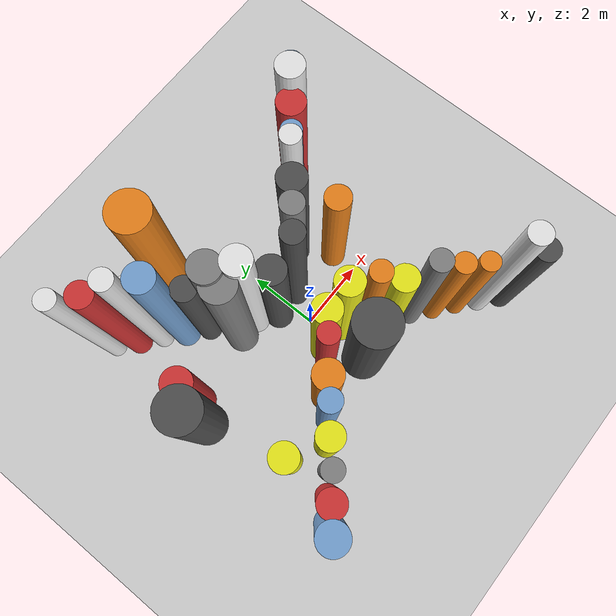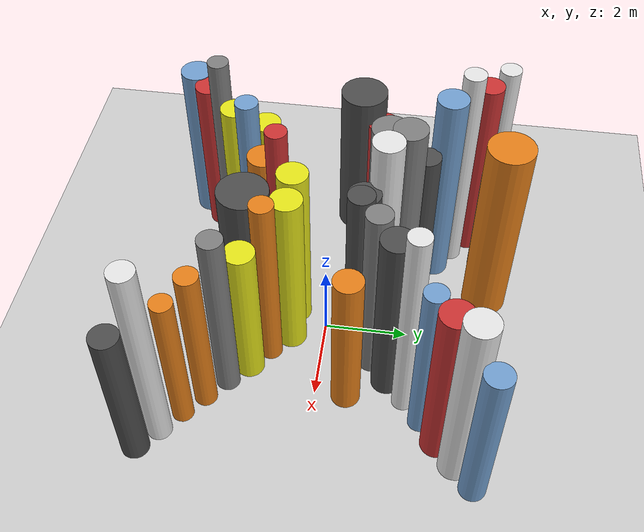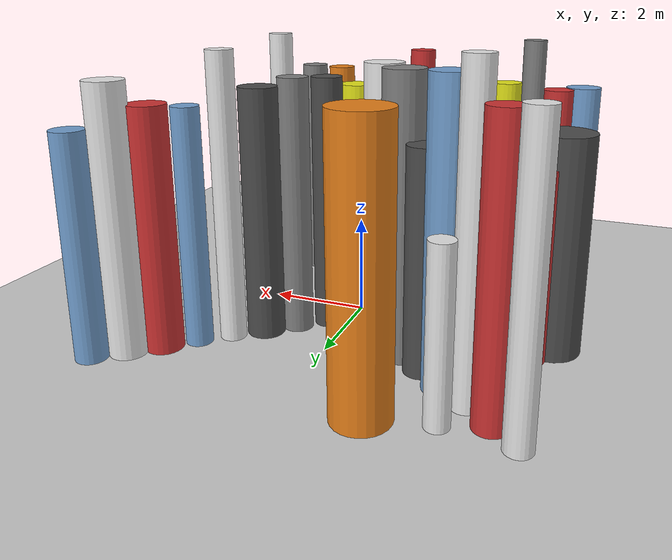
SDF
<?xml version='1.0'?>
<sdf version='1.6'>
  <world name='routeA_rl_v1__dense_recovery__rl_train__bottleneck_corridor__000066'>
    <!-- Sun light -->
    <light name='sun' type='directional'>
      <cast_shadows>1</cast_shadows>
      <pose>0 0 10 0 0 0</pose>
      <diffuse>0.8 0.8 0.8 1</diffuse>
      <specular>0.2 0.2 0.2 1</specular>
      <attenuation>
        <range>1000</range>
        <constant>0.9</constant>
        <linear>0.01</linear>
        <quadratic>0.001</quadratic>
      </attenuation>
      <direction>-0.5 0.1 -0.9</direction>
    </light>

    <!-- Ground plane -->
    <model name='ground_plane'>
      <static>1</static>
      <link name='link'>
        <collision name='collision'>
          <geometry>
            <plane>
              <normal>0 0 1</normal>
              <size>100 100</size>
            </plane>
          </geometry>
          <surface>
            <contact>
              <collide_bitmask>65535</collide_bitmask>
              <ode/>
            </contact>
            <friction>
              <ode>
                <mu>100</mu>
                <mu2>50</mu2>
              </ode>
              <torsional><ode/></torsional>
            </friction>
            <bounce/>
          </surface>
          <max_contacts>10</max_contacts>
        </collision>
        <visual name='visual'>
          <cast_shadows>0</cast_shadows>
          <geometry>
            <plane>
              <normal>0 0 1</normal>
              <size>100 100</size>
            </plane>
          </geometry>
          <material>
            <script>
              <uri>file://media/materials/scripts/gazebo.material</uri>
              <n>Gazebo/Grey</n>
            </script>
          </material>
        </visual>
      </link>
    </model>

    <!-- Environment -->
    <magnetic_field>6e-06 2.3e-05 -4.2e-05</magnetic_field>
    <atmosphere type='adiabatic'/>
    <physics name='default_physics' default='0' type='ode'>
      <gravity>0 0 -9.8</gravity>
      <max_step_size>0.004</max_step_size>
      <real_time_factor>1</real_time_factor>
      <real_time_update_rate>250</real_time_update_rate>
    </physics>
    <scene>
      <ambient>0.4 0.4 0.4 1</ambient>
      <background>0.7 0.7 0.7 1</background>
      <shadows>1</shadows>
    </scene>
    <wind/>
    <spherical_coordinates>
      <surface_model>EARTH_WGS84</surface_model>
      <latitude_deg>0</latitude_deg>
      <longitude_deg>0</longitude_deg>
      <elevation>0</elevation>
      <heading_deg>0</heading_deg>
    </spherical_coordinates>

    <!-- ============ OBSTACLES (40) ============ -->
    <model name='funnel_l_0'>
      <static>1</static>
      <link name='link'>
        <visual name='visual'>
          <geometry>
            <cylinder>
              <radius>0.3861</radius>
              <length>4.4952</length>
            </cylinder>
          </geometry>
          <material>
            <script>
              <n>Gazebo/Blue</n>
              <uri>file://media/materials/scripts/gazebo.material</uri>
            </script>
            <ambient>0.447 0.624 0.812 1</ambient>
          </material>
        </visual>
        <collision name='collision'>
          <geometry>
            <cylinder>
              <radius>0.3861</radius>
              <length>4.4952</length>
            </cylinder>
          </geometry>
          <max_contacts>10</max_contacts>
          <surface>
            <contact><ode/></contact>
            <bounce/>
            <friction>
              <ode><mu>1</mu><mu2>1</mu2></ode>
              <torsional><ode/></torsional>
            </friction>
          </surface>
        </collision>
      </link>
      <pose>-4.0000 -3.8000 2.2476 0 0 0.0000</pose>
    </model>

    <model name='funnel_r_0'>
      <static>1</static>
      <link name='link'>
        <visual name='visual'>
          <geometry>
            <cylinder>
              <radius>0.2563</radius>
              <length>5.3229</length>
            </cylinder>
          </geometry>
          <material>
            <script>
              <n>Gazebo/White</n>
              <uri>file://media/materials/scripts/gazebo.material</uri>
            </script>
            <ambient>0.9 0.9 0.9 1</ambient>
          </material>
        </visual>
        <collision name='collision'>
          <geometry>
            <cylinder>
              <radius>0.2563</radius>
              <length>5.3229</length>
            </cylinder>
          </geometry>
          <max_contacts>10</max_contacts>
          <surface>
            <contact><ode/></contact>
            <bounce/>
            <friction>
              <ode><mu>1</mu><mu2>1</mu2></ode>
              <torsional><ode/></torsional>
            </friction>
          </surface>
        </collision>
      </link>
      <pose>-4.0000 3.8000 2.6614 0 0 0.0000</pose>
    </model>

    <model name='funnel_l_1'>
      <static>1</static>
      <link name='link'>
        <visual name='visual'>
          <geometry>
            <cylinder>
              <radius>0.3411</radius>
              <length>4.4759</length>
            </cylinder>
          </geometry>
          <material>
            <script>
              <n>Gazebo/Red</n>
              <uri>file://media/materials/scripts/gazebo.material</uri>
            </script>
            <ambient>0.8 0.2 0.2 1</ambient>
          </material>
        </visual>
        <collision name='collision'>
          <geometry>
            <cylinder>
              <radius>0.3411</radius>
              <length>4.4759</length>
            </cylinder>
          </geometry>
          <max_contacts>10</max_contacts>
          <surface>
            <contact><ode/></contact>
            <bounce/>
            <friction>
              <ode><mu>1</mu><mu2>1</mu2></ode>
              <torsional><ode/></torsional>
            </friction>
          </surface>
        </collision>
      </link>
      <pose>-3.4857 -3.3714 2.2380 0 0 0.0000</pose>
    </model>

    <model name='funnel_r_1'>
      <static>1</static>
      <link name='link'>
        <visual name='visual'>
          <geometry>
            <cylinder>
              <radius>0.3231</radius>
              <length>5.2009</length>
            </cylinder>
          </geometry>
          <material>
            <script>
              <n>Gazebo/Red</n>
              <uri>file://media/materials/scripts/gazebo.material</uri>
            </script>
            <ambient>0.8 0.2 0.2 1</ambient>
          </material>
        </visual>
        <collision name='collision'>
          <geometry>
            <cylinder>
              <radius>0.3231</radius>
              <length>5.2009</length>
            </cylinder>
          </geometry>
          <max_contacts>10</max_contacts>
          <surface>
            <contact><ode/></contact>
            <bounce/>
            <friction>
              <ode><mu>1</mu><mu2>1</mu2></ode>
              <torsional><ode/></torsional>
            </friction>
          </surface>
        </collision>
      </link>
      <pose>-3.4857 3.3714 2.6004 0 0 0.0000</pose>
    </model>

    <model name='funnel_l_2'>
      <static>1</static>
      <link name='link'>
        <visual name='visual'>
          <geometry>
            <cylinder>
              <radius>0.2502</radius>
              <length>5.5939</length>
            </cylinder>
          </geometry>
          <material>
            <script>
              <n>Gazebo/Grey</n>
              <uri>file://media/materials/scripts/gazebo.material</uri>
            </script>
            <ambient>0.5 0.5 0.5 1</ambient>
          </material>
        </visual>
        <collision name='collision'>
          <geometry>
            <cylinder>
              <radius>0.2502</radius>
              <length>5.5939</length>
            </cylinder>
          </geometry>
          <max_contacts>10</max_contacts>
          <surface>
            <contact><ode/></contact>
            <bounce/>
            <friction>
              <ode><mu>1</mu><mu2>1</mu2></ode>
              <torsional><ode/></torsional>
            </friction>
          </surface>
        </collision>
      </link>
      <pose>-2.9714 -2.9429 2.7970 0 0 0.0000</pose>
    </model>

    <model name='funnel_r_2'>
      <static>1</static>
      <link name='link'>
        <visual name='visual'>
          <geometry>
            <cylinder>
              <radius>0.2661</radius>
              <length>5.8677</length>
            </cylinder>
          </geometry>
          <material>
            <script>
              <n>Gazebo/White</n>
              <uri>file://media/materials/scripts/gazebo.material</uri>
            </script>
            <ambient>0.9 0.9 0.9 1</ambient>
          </material>
        </visual>
        <collision name='collision'>
          <geometry>
            <cylinder>
              <radius>0.2661</radius>
              <length>5.8677</length>
            </cylinder>
          </geometry>
          <max_contacts>10</max_contacts>
          <surface>
            <contact><ode/></contact>
            <bounce/>
            <friction>
              <ode><mu>1</mu><mu2>1</mu2></ode>
              <torsional><ode/></torsional>
            </friction>
          </surface>
        </collision>
      </link>
      <pose>-2.9714 2.9429 2.9339 0 0 0.0000</pose>
    </model>

    <model name='funnel_l_3'>
      <static>1</static>
      <link name='link'>
        <visual name='visual'>
          <geometry>
            <cylinder>
              <radius>0.3323</radius>
              <length>4.7001</length>
            </cylinder>
          </geometry>
          <material>
            <script>
              <n>Gazebo/Yellow</n>
              <uri>file://media/materials/scripts/gazebo.material</uri>
            </script>
            <ambient>0.9 0.9 0.1 1</ambient>
          </material>
        </visual>
        <collision name='collision'>
          <geometry>
            <cylinder>
              <radius>0.3323</radius>
              <length>4.7001</length>
            </cylinder>
          </geometry>
          <max_contacts>10</max_contacts>
          <surface>
            <contact><ode/></contact>
            <bounce/>
            <friction>
              <ode><mu>1</mu><mu2>1</mu2></ode>
              <torsional><ode/></torsional>
            </friction>
          </surface>
        </collision>
      </link>
      <pose>-2.4571 -2.5143 2.3500 0 0 0.0000</pose>
    </model>

    <model name='funnel_r_3'>
      <static>1</static>
      <link name='link'>
        <visual name='visual'>
          <geometry>
            <cylinder>
              <radius>0.3681</radius>
              <length>5.5388</length>
            </cylinder>
          </geometry>
          <material>
            <script>
              <n>Gazebo/Blue</n>
              <uri>file://media/materials/scripts/gazebo.material</uri>
            </script>
            <ambient>0.447 0.624 0.812 1</ambient>
          </material>
        </visual>
        <collision name='collision'>
          <geometry>
            <cylinder>
              <radius>0.3681</radius>
              <length>5.5388</length>
            </cylinder>
          </geometry>
          <max_contacts>10</max_contacts>
          <surface>
            <contact><ode/></contact>
            <bounce/>
            <friction>
              <ode><mu>1</mu><mu2>1</mu2></ode>
              <torsional><ode/></torsional>
            </friction>
          </surface>
        </collision>
      </link>
      <pose>-2.4571 2.5143 2.7694 0 0 0.0000</pose>
    </model>

    <model name='funnel_l_4'>
      <static>1</static>
      <link name='link'>
        <visual name='visual'>
          <geometry>
            <cylinder>
              <radius>0.2711</radius>
              <length>5.3368</length>
            </cylinder>
          </geometry>
          <material>
            <script>
              <n>Gazebo/Blue</n>
              <uri>file://media/materials/scripts/gazebo.material</uri>
            </script>
            <ambient>0.447 0.624 0.812 1</ambient>
          </material>
        </visual>
        <collision name='collision'>
          <geometry>
            <cylinder>
              <radius>0.2711</radius>
              <length>5.3368</length>
            </cylinder>
          </geometry>
          <max_contacts>10</max_contacts>
          <surface>
            <contact><ode/></contact>
            <bounce/>
            <friction>
              <ode><mu>1</mu><mu2>1</mu2></ode>
              <torsional><ode/></torsional>
            </friction>
          </surface>
        </collision>
      </link>
      <pose>-1.9429 -2.0857 2.6684 0 0 0.0000</pose>
    </model>

    <model name='funnel_r_4'>
      <static>1</static>
      <link name='link'>
        <visual name='visual'>
          <geometry>
            <cylinder>
              <radius>0.3254</radius>
              <length>4.2283</length>
            </cylinder>
          </geometry>
          <material>
            <script>
              <n>Gazebo/DarkGrey</n>
              <uri>file://media/materials/scripts/gazebo.material</uri>
            </script>
            <ambient>0.3 0.3 0.3 1</ambient>
          </material>
        </visual>
        <collision name='collision'>
          <geometry>
            <cylinder>
              <radius>0.3254</radius>
              <length>4.2283</length>
            </cylinder>
          </geometry>
          <max_contacts>10</max_contacts>
          <surface>
            <contact><ode/></contact>
            <bounce/>
            <friction>
              <ode><mu>1</mu><mu2>1</mu2></ode>
              <torsional><ode/></torsional>
            </friction>
          </surface>
        </collision>
      </link>
      <pose>-1.9429 2.0857 2.1141 0 0 0.0000</pose>
    </model>

    <model name='funnel_l_5'>
      <static>1</static>
      <link name='link'>
        <visual name='visual'>
          <geometry>
            <cylinder>
              <radius>0.3804</radius>
              <length>4.2447</length>
            </cylinder>
          </geometry>
          <material>
            <script>
              <n>Gazebo/Orange</n>
              <uri>file://media/materials/scripts/gazebo.material</uri>
            </script>
            <ambient>0.9 0.5 0.1 1</ambient>
          </material>
        </visual>
        <collision name='collision'>
          <geometry>
            <cylinder>
              <radius>0.3804</radius>
              <length>4.2447</length>
            </cylinder>
          </geometry>
          <max_contacts>10</max_contacts>
          <surface>
            <contact><ode/></contact>
            <bounce/>
            <friction>
              <ode><mu>1</mu><mu2>1</mu2></ode>
              <torsional><ode/></torsional>
            </friction>
          </surface>
        </collision>
      </link>
      <pose>-1.4286 -1.6571 2.1223 0 0 0.0000</pose>
    </model>

    <model name='funnel_r_5'>
      <static>1</static>
      <link name='link'>
        <visual name='visual'>
          <geometry>
            <cylinder>
              <radius>0.3972</radius>
              <length>5.4399</length>
            </cylinder>
          </geometry>
          <material>
            <script>
              <n>Gazebo/Grey</n>
              <uri>file://media/materials/scripts/gazebo.material</uri>
            </script>
            <ambient>0.5 0.5 0.5 1</ambient>
          </material>
        </visual>
        <collision name='collision'>
          <geometry>
            <cylinder>
              <radius>0.3972</radius>
              <length>5.4399</length>
            </cylinder>
          </geometry>
          <max_contacts>10</max_contacts>
          <surface>
            <contact><ode/></contact>
            <bounce/>
            <friction>
              <ode><mu>1</mu><mu2>1</mu2></ode>
              <torsional><ode/></torsional>
            </friction>
          </surface>
        </collision>
      </link>
      <pose>-1.4286 1.6571 2.7199 0 0 0.0000</pose>
    </model>

    <model name='funnel_l_6'>
      <static>1</static>
      <link name='link'>
        <visual name='visual'>
          <geometry>
            <cylinder>
              <radius>0.2557</radius>
              <length>5.4670</length>
            </cylinder>
          </geometry>
          <material>
            <script>
              <n>Gazebo/Red</n>
              <uri>file://media/materials/scripts/gazebo.material</uri>
            </script>
            <ambient>0.8 0.2 0.2 1</ambient>
          </material>
        </visual>
        <collision name='collision'>
          <geometry>
            <cylinder>
              <radius>0.2557</radius>
              <length>5.4670</length>
            </cylinder>
          </geometry>
          <max_contacts>10</max_contacts>
          <surface>
            <contact><ode/></contact>
            <bounce/>
            <friction>
              <ode><mu>1</mu><mu2>1</mu2></ode>
              <torsional><ode/></torsional>
            </friction>
          </surface>
        </collision>
      </link>
      <pose>-0.9143 -1.2286 2.7335 0 0 0.0000</pose>
    </model>

    <model name='funnel_r_6'>
      <static>1</static>
      <link name='link'>
        <visual name='visual'>
          <geometry>
            <cylinder>
              <radius>0.3727</radius>
              <length>5.4706</length>
            </cylinder>
          </geometry>
          <material>
            <script>
              <n>Gazebo/White</n>
              <uri>file://media/materials/scripts/gazebo.material</uri>
            </script>
            <ambient>0.9 0.9 0.9 1</ambient>
          </material>
        </visual>
        <collision name='collision'>
          <geometry>
            <cylinder>
              <radius>0.3727</radius>
              <length>5.4706</length>
            </cylinder>
          </geometry>
          <max_contacts>10</max_contacts>
          <surface>
            <contact><ode/></contact>
            <bounce/>
            <friction>
              <ode><mu>1</mu><mu2>1</mu2></ode>
              <torsional><ode/></torsional>
            </friction>
          </surface>
        </collision>
      </link>
      <pose>-0.9143 1.2286 2.7353 0 0 0.0000</pose>
    </model>

    <model name='funnel_l_7'>
      <static>1</static>
      <link name='link'>
        <visual name='visual'>
          <geometry>
            <cylinder>
              <radius>0.3658</radius>
              <length>4.7718</length>
            </cylinder>
          </geometry>
          <material>
            <script>
              <n>Gazebo/Yellow</n>
              <uri>file://media/materials/scripts/gazebo.material</uri>
            </script>
            <ambient>0.9 0.9 0.1 1</ambient>
          </material>
        </visual>
        <collision name='collision'>
          <geometry>
            <cylinder>
              <radius>0.3658</radius>
              <length>4.7718</length>
            </cylinder>
          </geometry>
          <max_contacts>10</max_contacts>
          <surface>
            <contact><ode/></contact>
            <bounce/>
            <friction>
              <ode><mu>1</mu><mu2>1</mu2></ode>
              <torsional><ode/></torsional>
            </friction>
          </surface>
        </collision>
      </link>
      <pose>-0.4000 -0.8000 2.3859 0 0 0.0000</pose>
    </model>

    <model name='funnel_r_7'>
      <static>1</static>
      <link name='link'>
        <visual name='visual'>
          <geometry>
            <cylinder>
              <radius>0.3838</radius>
              <length>4.3619</length>
            </cylinder>
          </geometry>
          <material>
            <script>
              <n>Gazebo/DarkGrey</n>
              <uri>file://media/materials/scripts/gazebo.material</uri>
            </script>
            <ambient>0.3 0.3 0.3 1</ambient>
          </material>
        </visual>
        <collision name='collision'>
          <geometry>
            <cylinder>
              <radius>0.3838</radius>
              <length>4.3619</length>
            </cylinder>
          </geometry>
          <max_contacts>10</max_contacts>
          <surface>
            <contact><ode/></contact>
            <bounce/>
            <friction>
              <ode><mu>1</mu><mu2>1</mu2></ode>
              <torsional><ode/></torsional>
            </friction>
          </surface>
        </collision>
      </link>
      <pose>-0.4000 0.8000 2.1810 0 0 0.0000</pose>
    </model>

    <model name='funnel_out_l_0'>
      <static>1</static>
      <link name='link'>
        <visual name='visual'>
          <geometry>
            <cylinder>
              <radius>0.3661</radius>
              <length>4.7547</length>
            </cylinder>
          </geometry>
          <material>
            <script>
              <n>Gazebo/Yellow</n>
              <uri>file://media/materials/scripts/gazebo.material</uri>
            </script>
            <ambient>0.9 0.9 0.1 1</ambient>
          </material>
        </visual>
        <collision name='collision'>
          <geometry>
            <cylinder>
              <radius>0.3661</radius>
              <length>4.7547</length>
            </cylinder>
          </geometry>
          <max_contacts>10</max_contacts>
          <surface>
            <contact><ode/></contact>
            <bounce/>
            <friction>
              <ode><mu>1</mu><mu2>1</mu2></ode>
              <torsional><ode/></torsional>
            </friction>
          </surface>
        </collision>
      </link>
      <pose>0.4000 -0.8000 2.3774 0 0 0.0000</pose>
    </model>

    <model name='funnel_out_r_0'>
      <static>1</static>
      <link name='link'>
        <visual name='visual'>
          <geometry>
            <cylinder>
              <radius>0.3048</radius>
              <length>5.1038</length>
            </cylinder>
          </geometry>
          <material>
            <script>
              <n>Gazebo/DarkGrey</n>
              <uri>file://media/materials/scripts/gazebo.material</uri>
            </script>
            <ambient>0.3 0.3 0.3 1</ambient>
          </material>
        </visual>
        <collision name='collision'>
          <geometry>
            <cylinder>
              <radius>0.3048</radius>
              <length>5.1038</length>
            </cylinder>
          </geometry>
          <max_contacts>10</max_contacts>
          <surface>
            <contact><ode/></contact>
            <bounce/>
            <friction>
              <ode><mu>1</mu><mu2>1</mu2></ode>
              <torsional><ode/></torsional>
            </friction>
          </surface>
        </collision>
      </link>
      <pose>0.4000 0.8000 2.5519 0 0 0.0000</pose>
    </model>

    <model name='funnel_out_l_1'>
      <static>1</static>
      <link name='link'>
        <visual name='visual'>
          <geometry>
            <cylinder>
              <radius>0.2746</radius>
              <length>5.0523</length>
            </cylinder>
          </geometry>
          <material>
            <script>
              <n>Gazebo/Orange</n>
              <uri>file://media/materials/scripts/gazebo.material</uri>
            </script>
            <ambient>0.9 0.5 0.1 1</ambient>
          </material>
        </visual>
        <collision name='collision'>
          <geometry>
            <cylinder>
              <radius>0.2746</radius>
              <length>5.0523</length>
            </cylinder>
          </geometry>
          <max_contacts>10</max_contacts>
          <surface>
            <contact><ode/></contact>
            <bounce/>
            <friction>
              <ode><mu>1</mu><mu2>1</mu2></ode>
              <torsional><ode/></torsional>
            </friction>
          </surface>
        </collision>
      </link>
      <pose>0.9143 -1.2286 2.5262 0 0 0.0000</pose>
    </model>

    <model name='funnel_out_r_1'>
      <static>1</static>
      <link name='link'>
        <visual name='visual'>
          <geometry>
            <cylinder>
              <radius>0.3016</radius>
              <length>5.1256</length>
            </cylinder>
          </geometry>
          <material>
            <script>
              <n>Gazebo/Grey</n>
              <uri>file://media/materials/scripts/gazebo.material</uri>
            </script>
            <ambient>0.5 0.5 0.5 1</ambient>
          </material>
        </visual>
        <collision name='collision'>
          <geometry>
            <cylinder>
              <radius>0.3016</radius>
              <length>5.1256</length>
            </cylinder>
          </geometry>
          <max_contacts>10</max_contacts>
          <surface>
            <contact><ode/></contact>
            <bounce/>
            <friction>
              <ode><mu>1</mu><mu2>1</mu2></ode>
              <torsional><ode/></torsional>
            </friction>
          </surface>
        </collision>
      </link>
      <pose>0.9143 1.2286 2.5628 0 0 0.0000</pose>
    </model>

    <model name='funnel_out_l_2'>
      <static>1</static>
      <link name='link'>
        <visual name='visual'>
          <geometry>
            <cylinder>
              <radius>0.3524</radius>
              <length>4.0826</length>
            </cylinder>
          </geometry>
          <material>
            <script>
              <n>Gazebo/Yellow</n>
              <uri>file://media/materials/scripts/gazebo.material</uri>
            </script>
            <ambient>0.9 0.9 0.1 1</ambient>
          </material>
        </visual>
        <collision name='collision'>
          <geometry>
            <cylinder>
              <radius>0.3524</radius>
              <length>4.0826</length>
            </cylinder>
          </geometry>
          <max_contacts>10</max_contacts>
          <surface>
            <contact><ode/></contact>
            <bounce/>
            <friction>
              <ode><mu>1</mu><mu2>1</mu2></ode>
              <torsional><ode/></torsional>
            </friction>
          </surface>
        </collision>
      </link>
      <pose>1.4286 -1.6571 2.0413 0 0 0.0000</pose>
    </model>

    <model name='funnel_out_r_2'>
      <static>1</static>
      <link name='link'>
        <visual name='visual'>
          <geometry>
            <cylinder>
              <radius>0.3758</radius>
              <length>4.9770</length>
            </cylinder>
          </geometry>
          <material>
            <script>
              <n>Gazebo/DarkGrey</n>
              <uri>file://media/materials/scripts/gazebo.material</uri>
            </script>
            <ambient>0.3 0.3 0.3 1</ambient>
          </material>
        </visual>
        <collision name='collision'>
          <geometry>
            <cylinder>
              <radius>0.3758</radius>
              <length>4.9770</length>
            </cylinder>
          </geometry>
          <max_contacts>10</max_contacts>
          <surface>
            <contact><ode/></contact>
            <bounce/>
            <friction>
              <ode><mu>1</mu><mu2>1</mu2></ode>
              <torsional><ode/></torsional>
            </friction>
          </surface>
        </collision>
      </link>
      <pose>1.4286 1.6571 2.4885 0 0 0.0000</pose>
    </model>

    <model name='funnel_out_l_3'>
      <static>1</static>
      <link name='link'>
        <visual name='visual'>
          <geometry>
            <cylinder>
              <radius>0.2839</radius>
              <length>4.9646</length>
            </cylinder>
          </geometry>
          <material>
            <script>
              <n>Gazebo/Grey</n>
              <uri>file://media/materials/scripts/gazebo.material</uri>
            </script>
            <ambient>0.5 0.5 0.5 1</ambient>
          </material>
        </visual>
        <collision name='collision'>
          <geometry>
            <cylinder>
              <radius>0.2839</radius>
              <length>4.9646</length>
            </cylinder>
          </geometry>
          <max_contacts>10</max_contacts>
          <surface>
            <contact><ode/></contact>
            <bounce/>
            <friction>
              <ode><mu>1</mu><mu2>1</mu2></ode>
              <torsional><ode/></torsional>
            </friction>
          </surface>
        </collision>
      </link>
      <pose>1.9429 -2.0857 2.4823 0 0 0.0000</pose>
    </model>

    <model name='funnel_out_r_3'>
      <static>1</static>
      <link name='link'>
        <visual name='visual'>
          <geometry>
            <cylinder>
              <radius>0.2593</radius>
              <length>5.6751</length>
            </cylinder>
          </geometry>
          <material>
            <script>
              <n>Gazebo/White</n>
              <uri>file://media/materials/scripts/gazebo.material</uri>
            </script>
            <ambient>0.9 0.9 0.9 1</ambient>
          </material>
        </visual>
        <collision name='collision'>
          <geometry>
            <cylinder>
              <radius>0.2593</radius>
              <length>5.6751</length>
            </cylinder>
          </geometry>
          <max_contacts>10</max_contacts>
          <surface>
            <contact><ode/></contact>
            <bounce/>
            <friction>
              <ode><mu>1</mu><mu2>1</mu2></ode>
              <torsional><ode/></torsional>
            </friction>
          </surface>
        </collision>
      </link>
      <pose>1.9429 2.0857 2.8375 0 0 0.0000</pose>
    </model>

    <model name='funnel_out_l_4'>
      <static>1</static>
      <link name='link'>
        <visual name='visual'>
          <geometry>
            <cylinder>
              <radius>0.2714</radius>
              <length>4.3726</length>
            </cylinder>
          </geometry>
          <material>
            <script>
              <n>Gazebo/Orange</n>
              <uri>file://media/materials/scripts/gazebo.material</uri>
            </script>
            <ambient>0.9 0.5 0.1 1</ambient>
          </material>
        </visual>
        <collision name='collision'>
          <geometry>
            <cylinder>
              <radius>0.2714</radius>
              <length>4.3726</length>
            </cylinder>
          </geometry>
          <max_contacts>10</max_contacts>
          <surface>
            <contact><ode/></contact>
            <bounce/>
            <friction>
              <ode><mu>1</mu><mu2>1</mu2></ode>
              <torsional><ode/></torsional>
            </friction>
          </surface>
        </collision>
      </link>
      <pose>2.4571 -2.5143 2.1863 0 0 0.0000</pose>
    </model>

    <model name='funnel_out_r_4'>
      <static>1</static>
      <link name='link'>
        <visual name='visual'>
          <geometry>
            <cylinder>
              <radius>0.2667</radius>
              <length>4.6889</length>
            </cylinder>
          </geometry>
          <material>
            <script>
              <n>Gazebo/Blue</n>
              <uri>file://media/materials/scripts/gazebo.material</uri>
            </script>
            <ambient>0.447 0.624 0.812 1</ambient>
          </material>
        </visual>
        <collision name='collision'>
          <geometry>
            <cylinder>
              <radius>0.2667</radius>
              <length>4.6889</length>
            </cylinder>
          </geometry>
          <max_contacts>10</max_contacts>
          <surface>
            <contact><ode/></contact>
            <bounce/>
            <friction>
              <ode><mu>1</mu><mu2>1</mu2></ode>
              <torsional><ode/></torsional>
            </friction>
          </surface>
        </collision>
      </link>
      <pose>2.4571 2.5143 2.3444 0 0 0.0000</pose>
    </model>

    <model name='funnel_out_l_5'>
      <static>1</static>
      <link name='link'>
        <visual name='visual'>
          <geometry>
            <cylinder>
              <radius>0.2568</radius>
              <length>4.0633</length>
            </cylinder>
          </geometry>
          <material>
            <script>
              <n>Gazebo/Orange</n>
              <uri>file://media/materials/scripts/gazebo.material</uri>
            </script>
            <ambient>0.9 0.5 0.1 1</ambient>
          </material>
        </visual>
        <collision name='collision'>
          <geometry>
            <cylinder>
              <radius>0.2568</radius>
              <length>4.0633</length>
            </cylinder>
          </geometry>
          <max_contacts>10</max_contacts>
          <surface>
            <contact><ode/></contact>
            <bounce/>
            <friction>
              <ode><mu>1</mu><mu2>1</mu2></ode>
              <torsional><ode/></torsional>
            </friction>
          </surface>
        </collision>
      </link>
      <pose>2.9714 -2.9429 2.0317 0 0 0.0000</pose>
    </model>

    <model name='funnel_out_r_5'>
      <static>1</static>
      <link name='link'>
        <visual name='visual'>
          <geometry>
            <cylinder>
              <radius>0.3769</radius>
              <length>4.7598</length>
            </cylinder>
          </geometry>
          <material>
            <script>
              <n>Gazebo/Red</n>
              <uri>file://media/materials/scripts/gazebo.material</uri>
            </script>
            <ambient>0.8 0.2 0.2 1</ambient>
          </material>
        </visual>
        <collision name='collision'>
          <geometry>
            <cylinder>
              <radius>0.3769</radius>
              <length>4.7598</length>
            </cylinder>
          </geometry>
          <max_contacts>10</max_contacts>
          <surface>
            <contact><ode/></contact>
            <bounce/>
            <friction>
              <ode><mu>1</mu><mu2>1</mu2></ode>
              <torsional><ode/></torsional>
            </friction>
          </surface>
        </collision>
      </link>
      <pose>2.9714 2.9429 2.3799 0 0 0.0000</pose>
    </model>

    <model name='funnel_out_l_6'>
      <static>1</static>
      <link name='link'>
        <visual name='visual'>
          <geometry>
            <cylinder>
              <radius>0.2931</radius>
              <length>5.5534</length>
            </cylinder>
          </geometry>
          <material>
            <script>
              <n>Gazebo/White</n>
              <uri>file://media/materials/scripts/gazebo.material</uri>
            </script>
            <ambient>0.9 0.9 0.9 1</ambient>
          </material>
        </visual>
        <collision name='collision'>
          <geometry>
            <cylinder>
              <radius>0.2931</radius>
              <length>5.5534</length>
            </cylinder>
          </geometry>
          <max_contacts>10</max_contacts>
          <surface>
            <contact><ode/></contact>
            <bounce/>
            <friction>
              <ode><mu>1</mu><mu2>1</mu2></ode>
              <torsional><ode/></torsional>
            </friction>
          </surface>
        </collision>
      </link>
      <pose>3.4857 -3.3714 2.7767 0 0 0.0000</pose>
    </model>

    <model name='funnel_out_r_6'>
      <static>1</static>
      <link name='link'>
        <visual name='visual'>
          <geometry>
            <cylinder>
              <radius>0.3723</radius>
              <length>5.2147</length>
            </cylinder>
          </geometry>
          <material>
            <script>
              <n>Gazebo/White</n>
              <uri>file://media/materials/scripts/gazebo.material</uri>
            </script>
            <ambient>0.9 0.9 0.9 1</ambient>
          </material>
        </visual>
        <collision name='collision'>
          <geometry>
            <cylinder>
              <radius>0.3723</radius>
              <length>5.2147</length>
            </cylinder>
          </geometry>
          <max_contacts>10</max_contacts>
          <surface>
            <contact><ode/></contact>
            <bounce/>
            <friction>
              <ode><mu>1</mu><mu2>1</mu2></ode>
              <torsional><ode/></torsional>
            </friction>
          </surface>
        </collision>
      </link>
      <pose>3.4857 3.3714 2.6073 0 0 0.0000</pose>
    </model>

    <model name='funnel_out_l_7'>
      <static>1</static>
      <link name='link'>
        <visual name='visual'>
          <geometry>
            <cylinder>
              <radius>0.3228</radius>
              <length>4.1414</length>
            </cylinder>
          </geometry>
          <material>
            <script>
              <n>Gazebo/DarkGrey</n>
              <uri>file://media/materials/scripts/gazebo.material</uri>
            </script>
            <ambient>0.3 0.3 0.3 1</ambient>
          </material>
        </visual>
        <collision name='collision'>
          <geometry>
            <cylinder>
              <radius>0.3228</radius>
              <length>4.1414</length>
            </cylinder>
          </geometry>
          <max_contacts>10</max_contacts>
          <surface>
            <contact><ode/></contact>
            <bounce/>
            <friction>
              <ode><mu>1</mu><mu2>1</mu2></ode>
              <torsional><ode/></torsional>
            </friction>
          </surface>
        </collision>
      </link>
      <pose>4.0000 -3.8000 2.0707 0 0 0.0000</pose>
    </model>

    <model name='funnel_out_r_7'>
      <static>1</static>
      <link name='link'>
        <visual name='visual'>
          <geometry>
            <cylinder>
              <radius>0.3132</radius>
              <length>4.3806</length>
            </cylinder>
          </geometry>
          <material>
            <script>
              <n>Gazebo/Blue</n>
              <uri>file://media/materials/scripts/gazebo.material</uri>
            </script>
            <ambient>0.447 0.624 0.812 1</ambient>
          </material>
        </visual>
        <collision name='collision'>
          <geometry>
            <cylinder>
              <radius>0.3132</radius>
              <length>4.3806</length>
            </cylinder>
          </geometry>
          <max_contacts>10</max_contacts>
          <surface>
            <contact><ode/></contact>
            <bounce/>
            <friction>
              <ode><mu>1</mu><mu2>1</mu2></ode>
              <torsional><ode/></torsional>
            </friction>
          </surface>
        </collision>
      </link>
      <pose>4.0000 3.8000 2.1903 0 0 0.0000</pose>
    </model>

    <model name='bn_scatter_0'>
      <static>1</static>
      <link name='link'>
        <visual name='visual'>
          <geometry>
            <cylinder>
              <radius>0.3717</radius>
              <length>3.5718</length>
            </cylinder>
          </geometry>
          <material>
            <script>
              <n>Gazebo/Yellow</n>
              <uri>file://media/materials/scripts/gazebo.material</uri>
            </script>
            <ambient>0.9 0.9 0.1 1</ambient>
          </material>
        </visual>
        <collision name='collision'>
          <geometry>
            <cylinder>
              <radius>0.3717</radius>
              <length>3.5718</length>
            </cylinder>
          </geometry>
          <max_contacts>10</max_contacts>
          <surface>
            <contact><ode/></contact>
            <bounce/>
            <friction>
              <ode><mu>1</mu><mu2>1</mu2></ode>
              <torsional><ode/></torsional>
            </friction>
          </surface>
        </collision>
      </link>
      <pose>-3.3956 -1.9817 1.7859 0 0 0.0000</pose>
    </model>

    <model name='bn_scatter_1'>
      <static>1</static>
      <link name='link'>
        <visual name='visual'>
          <geometry>
            <cylinder>
              <radius>0.3432</radius>
              <length>4.1905</length>
            </cylinder>
          </geometry>
          <material>
            <script>
              <n>Gazebo/Orange</n>
              <uri>file://media/materials/scripts/gazebo.material</uri>
            </script>
            <ambient>0.9 0.5 0.1 1</ambient>
          </material>
        </visual>
        <collision name='collision'>
          <geometry>
            <cylinder>
              <radius>0.3432</radius>
              <length>4.1905</length>
            </cylinder>
          </geometry>
          <max_contacts>10</max_contacts>
          <surface>
            <contact><ode/></contact>
            <bounce/>
            <friction>
              <ode><mu>1</mu><mu2>1</mu2></ode>
              <torsional><ode/></torsional>
            </friction>
          </surface>
        </collision>
      </link>
      <pose>1.9804 0.7378 2.0952 0 0 0.0000</pose>
    </model>

    <model name='bn_scatter_2'>
      <static>1</static>
      <link name='link'>
        <visual name='visual'>
          <geometry>
            <cylinder>
              <radius>0.5748</radius>
              <length>4.2640</length>
            </cylinder>
          </geometry>
          <material>
            <script>
              <n>Gazebo/DarkGrey</n>
              <uri>file://media/materials/scripts/gazebo.material</uri>
            </script>
            <ambient>0.3 0.3 0.3 1</ambient>
          </material>
        </visual>
        <collision name='collision'>
          <geometry>
            <cylinder>
              <radius>0.5748</radius>
              <length>4.2640</length>
            </cylinder>
          </geometry>
          <max_contacts>10</max_contacts>
          <surface>
            <contact><ode/></contact>
            <bounce/>
            <friction>
              <ode><mu>1</mu><mu2>1</mu2></ode>
              <torsional><ode/></torsional>
            </friction>
          </surface>
        </collision>
      </link>
      <pose>-4.0440 0.3895 2.1320 0 0 0.0000</pose>
    </model>

    <model name='bn_scatter_3'>
      <static>1</static>
      <link name='link'>
        <visual name='visual'>
          <geometry>
            <cylinder>
              <radius>0.5917</radius>
              <length>4.5639</length>
            </cylinder>
          </geometry>
          <material>
            <script>
              <n>Gazebo/DarkGrey</n>
              <uri>file://media/materials/scripts/gazebo.material</uri>
            </script>
            <ambient>0.3 0.3 0.3 1</ambient>
          </material>
        </visual>
        <collision name='collision'>
          <geometry>
            <cylinder>
              <radius>0.5917</radius>
              <length>4.5639</length>
            </cylinder>
          </geometry>
          <max_contacts>10</max_contacts>
          <surface>
            <contact><ode/></contact>
            <bounce/>
            <friction>
              <ode><mu>1</mu><mu2>1</mu2></ode>
              <torsional><ode/></torsional>
            </friction>
          </surface>
        </collision>
      </link>
      <pose>0.0798 -1.8237 2.2820 0 0 0.0000</pose>
    </model>

    <model name='bn_scatter_4'>
      <static>1</static>
      <link name='link'>
        <visual name='visual'>
          <geometry>
            <cylinder>
              <radius>0.4370</radius>
              <length>5.3220</length>
            </cylinder>
          </geometry>
          <material>
            <script>
              <n>Gazebo/Grey</n>
              <uri>file://media/materials/scripts/gazebo.material</uri>
            </script>
            <ambient>0.5 0.5 0.5 1</ambient>
          </material>
        </visual>
        <collision name='collision'>
          <geometry>
            <cylinder>
              <radius>0.4370</radius>
              <length>5.3220</length>
            </cylinder>
          </geometry>
          <max_contacts>10</max_contacts>
          <surface>
            <contact><ode/></contact>
            <bounce/>
            <friction>
              <ode><mu>1</mu><mu2>1</mu2></ode>
              <torsional><ode/></torsional>
            </friction>
          </surface>
        </collision>
      </link>
      <pose>-1.5355 1.2203 2.6610 0 0 0.0000</pose>
    </model>

    <model name='bn_scatter_5'>
      <static>1</static>
      <link name='link'>
        <visual name='visual'>
          <geometry>
            <cylinder>
              <radius>0.3950</radius>
              <length>3.6804</length>
            </cylinder>
          </geometry>
          <material>
            <script>
              <n>Gazebo/Red</n>
              <uri>file://media/materials/scripts/gazebo.material</uri>
            </script>
            <ambient>0.8 0.2 0.2 1</ambient>
          </material>
        </visual>
        <collision name='collision'>
          <geometry>
            <cylinder>
              <radius>0.3950</radius>
              <length>3.6804</length>
            </cylinder>
          </geometry>
          <max_contacts>10</max_contacts>
          <surface>
            <contact><ode/></contact>
            <bounce/>
            <friction>
              <ode><mu>1</mu><mu2>1</mu2></ode>
              <torsional><ode/></torsional>
            </friction>
          </surface>
        </collision>
      </link>
      <pose>-3.6410 0.9382 1.8402 0 0 0.0000</pose>
    </model>

    <model name='bn_scatter_6'>
      <static>1</static>
      <link name='link'>
        <visual name='visual'>
          <geometry>
            <cylinder>
              <radius>0.5474</radius>
              <length>5.1413</length>
            </cylinder>
          </geometry>
          <material>
            <script>
              <n>Gazebo/Orange</n>
              <uri>file://media/materials/scripts/gazebo.material</uri>
            </script>
            <ambient>0.9 0.5 0.1 1</ambient>
          </material>
        </visual>
        <collision name='collision'>
          <geometry>
            <cylinder>
              <radius>0.5474</radius>
              <length>5.1413</length>
            </cylinder>
          </geometry>
          <max_contacts>10</max_contacts>
          <surface>
            <contact><ode/></contact>
            <bounce/>
            <friction>
              <ode><mu>1</mu><mu2>1</mu2></ode>
              <torsional><ode/></torsional>
            </friction>
          </surface>
        </collision>
      </link>
      <pose>-1.4663 3.8708 2.5707 0 0 0.0000</pose>
    </model>

    <model name='bn_scatter_7'>
      <static>1</static>
      <link name='link'>
        <visual name='visual'>
          <geometry>
            <cylinder>
              <radius>0.2283</radius>
              <length>3.1813</length>
            </cylinder>
          </geometry>
          <material>
            <script>
              <n>Gazebo/White</n>
              <uri>file://media/materials/scripts/gazebo.material</uri>
            </script>
            <ambient>0.9 0.9 0.9 1</ambient>
          </material>
        </visual>
        <collision name='collision'>
          <geometry>
            <cylinder>
              <radius>0.2283</radius>
              <length>3.1813</length>
            </cylinder>
          </geometry>
          <max_contacts>10</max_contacts>
          <surface>
            <contact><ode/></contact>
            <bounce/>
            <friction>
              <ode><mu>1</mu><mu2>1</mu2></ode>
              <torsional><ode/></torsional>
            </friction>
          </surface>
        </collision>
      </link>
      <pose>-2.6789 3.6496 1.5906 0 0 0.0000</pose>
    </model>

    <!-- GUI camera -->
    <gui fullscreen='0'>
      <camera name='user_camera'>
        <pose>-15 0 18 0 0.85 0.15</pose>
        <view_controller>orbit</view_controller>
        <projection_type>perspective</projection_type>
      </camera>
    </gui>
  </world>
</sdf>
